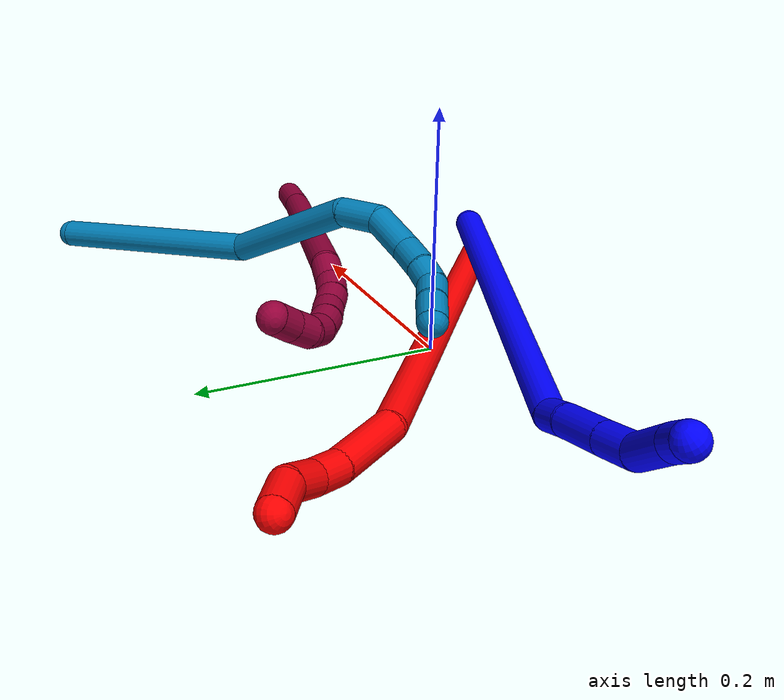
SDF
<sdf version="1.7">
 <world name="default">
  <model name="1">
   <static>0</static>
   <link name="1">
    <collision name="collision-cylinder-e_1_1_4">
     <pose>-0.116605 0.11567 -0.006835 -1.62982 -0.788554 0.831316</pose>
     <geometry><cylinder><radius>0.0125</radius><length>0.328773</length></cylinder></geometry>
     <surface>
      <friction><ode><mu>1.16</mu><mu2>1.16</mu2><slip1>0</slip1><slip2>0</slip2></ode></friction>
      <contact><ode><kp>1e+06</kp><kd>1</kd><max_vel>0</max_vel><min_depth>0.001</min_depth></ode></contact>
     </surface>
    </collision>
    <visual name="visual-cylinder-e_1_1_4">
     <pose>-0.116605 0.11567 -0.006835 -1.62982 -0.788554 0.831316</pose>
     <geometry><cylinder><radius>0.0125</radius><length>0.328773</length></cylinder></geometry>
     <material><ambient>0 0 1 1</ambient></material>
    </visual>
    <collision name="collision-cylinder-e_2_4_5">
     <pose>-0.237903 0.243126 -0.017513 -1.88598 -0.361883 0.493853</pose>
     <geometry><cylinder><radius>0.0125</radius><length>0.026513</length></cylinder></geometry>
     <surface>
      <friction><ode><mu>1.16</mu><mu2>1.16</mu2><slip1>0</slip1><slip2>0</slip2></ode></friction>
      <contact><ode><kp>1e+06</kp><kd>1</kd><max_vel>0</max_vel><min_depth>0.001</min_depth></ode></contact>
     </surface>
    </collision>
    <visual name="visual-cylinder-e_2_4_5">
     <pose>-0.237903 0.243126 -0.017513 -1.88598 -0.361883 0.493853</pose>
     <geometry><cylinder><radius>0.0125</radius><length>0.026513</length></cylinder></geometry>
     <material><ambient>0 0 1 1</ambient></material>
    </visual>
    <collision name="collision-cylinder-e_3_5_6">
     <pose>-0.250327 0.275685 -0.02414 -1.70403 -0.35338 0.40263</pose>
     <geometry><cylinder><radius>0.0125</radius><length>0.044674</length></cylinder></geometry>
     <surface>
      <friction><ode><mu>1.16</mu><mu2>1.16</mu2><slip1>0</slip1><slip2>0</slip2></ode></friction>
      <contact><ode><kp>1e+06</kp><kd>1</kd><max_vel>0</max_vel><min_depth>0.001</min_depth></ode></contact>
     </surface>
    </collision>
    <visual name="visual-cylinder-e_3_5_6">
     <pose>-0.250327 0.275685 -0.02414 -1.70403 -0.35338 0.40263</pose>
     <geometry><cylinder><radius>0.0125</radius><length>0.044674</length></cylinder></geometry>
     <material><ambient>0 0 1 1</ambient></material>
    </visual>
    <collision name="collision-cylinder-e_4_6_7">
     <pose>-0.263223 0.311221 -0.028839 -1.69976 -0.334001 0.37908</pose>
     <geometry><cylinder><radius>0.0125</radius><length>0.031519</length></cylinder></geometry>
     <surface>
      <friction><ode><mu>1.16</mu><mu2>1.16</mu2><slip1>0</slip1><slip2>0</slip2></ode></friction>
      <contact><ode><kp>1e+06</kp><kd>1</kd><max_vel>0</max_vel><min_depth>0.001</min_depth></ode></contact>
     </surface>
    </collision>
    <visual name="visual-cylinder-e_4_6_7">
     <pose>-0.263223 0.311221 -0.028839 -1.69976 -0.334001 0.37908</pose>
     <geometry><cylinder><radius>0.0125</radius><length>0.031519</length></cylinder></geometry>
     <material><ambient>0 0 1 1</ambient></material>
    </visual>
    <collision name="collision-cylinder-e_5_7_8">
     <pose>-0.272053 0.345593 -0.042657 -2.11641 -0.158368 0.280154</pose>
     <geometry><cylinder><radius>0.0125</radius><length>0.046455</length></cylinder></geometry>
     <surface>
      <friction><ode><mu>1.16</mu><mu2>1.16</mu2><slip1>0</slip1><slip2>0</slip2></ode></friction>
      <contact><ode><kp>1e+06</kp><kd>1</kd><max_vel>0</max_vel><min_depth>0.001</min_depth></ode></contact>
     </surface>
    </collision>
    <visual name="visual-cylinder-e_5_7_8">
     <pose>-0.272053 0.345593 -0.042657 -2.11641 -0.158368 0.280154</pose>
     <geometry><cylinder><radius>0.0125</radius><length>0.046455</length></cylinder></geometry>
     <material><ambient>0 0 1 1</ambient></material>
    </visual>
    <collision name="collision-cylinder-e_6_8_2">
     <pose>-0.278929 0.373953 -0.060456 -2.16356 -0.295454 0.545374</pose>
     <geometry><cylinder><radius>0.0125</radius><length>0.022065</length></cylinder></geometry>
     <surface>
      <friction><ode><mu>1.16</mu><mu2>1.16</mu2><slip1>0</slip1><slip2>0</slip2></ode></friction>
      <contact><ode><kp>1e+06</kp><kd>1</kd><max_vel>0</max_vel><min_depth>0.001</min_depth></ode></contact>
     </surface>
    </collision>
    <visual name="visual-cylinder-e_6_8_2">
     <pose>-0.278929 0.373953 -0.060456 -2.16356 -0.295454 0.545374</pose>
     <geometry><cylinder><radius>0.0125</radius><length>0.022065</length></cylinder></geometry>
     <material><ambient>0 0 1 1</ambient></material>
    </visual>
    <collision name="collision-sphere-2">
     <pose>-0.282141 0.382708 -0.066353 0 -0 0</pose>
     <geometry><sphere><radius>0.0125</radius></sphere></geometry>
     <surface>
      <friction><ode><mu>1.16</mu><mu2>1.16</mu2><slip1>0</slip1><slip2>0</slip2></ode></friction>
      <contact><ode><kp>1e+06</kp><kd>1</kd><max_vel>0</max_vel><min_depth>0.001</min_depth></ode></contact>
     </surface>
    </collision>
    <visual name="visual-sphere-2">
     <pose>-0.282141 0.382708 -0.066353 0 -0 0</pose>
     <geometry><sphere><radius>0.0125</radius></sphere></geometry>
     <material><ambient>0 0 1 1</ambient></material>
    </visual>
    <collision name="collision-sphere-4">
     <pose>-0.23321 0.231339 -0.01367 0 -0 0</pose>
     <geometry><sphere><radius>0.0125</radius></sphere></geometry>
     <surface>
      <friction><ode><mu>1.16</mu><mu2>1.16</mu2><slip1>0</slip1><slip2>0</slip2></ode></friction>
      <contact><ode><kp>1e+06</kp><kd>1</kd><max_vel>0</max_vel><min_depth>0.001</min_depth></ode></contact>
     </surface>
    </collision>
    <visual name="visual-sphere-4">
     <pose>-0.23321 0.231339 -0.01367 0 -0 0</pose>
     <geometry><sphere><radius>0.0125</radius></sphere></geometry>
     <material><ambient>0 0 1 1</ambient></material>
    </visual>
    <collision name="collision-sphere-1">
     <geometry><sphere><radius>0.0125</radius></sphere></geometry>
     <surface>
      <friction><ode><mu>1.16</mu><mu2>1.16</mu2><slip1>0</slip1><slip2>0</slip2></ode></friction>
      <contact><ode><kp>1e+06</kp><kd>1</kd><max_vel>0</max_vel><min_depth>0.001</min_depth></ode></contact>
     </surface>
    </collision>
    <visual name="visual-sphere-1">
     <geometry><sphere><radius>0.0125</radius></sphere></geometry>
     <material><ambient>0 0 1 1</ambient></material>
    </visual>
    <collision name="collision-sphere-8">
     <pose>-0.275716 0.365199 -0.05456 0 -0 0</pose>
     <geometry><sphere><radius>0.0125</radius></sphere></geometry>
     <surface>
      <friction><ode><mu>1.16</mu><mu2>1.16</mu2><slip1>0</slip1><slip2>0</slip2></ode></friction>
      <contact><ode><kp>1e+06</kp><kd>1</kd><max_vel>0</max_vel><min_depth>0.001</min_depth></ode></contact>
     </surface>
    </collision>
    <visual name="visual-sphere-8">
     <pose>-0.275716 0.365199 -0.05456 0 -0 0</pose>
     <geometry><sphere><radius>0.0125</radius></sphere></geometry>
     <material><ambient>0 0 1 1</ambient></material>
    </visual>
    <collision name="collision-sphere-5">
     <pose>-0.242596 0.254913 -0.021357 0 -0 0</pose>
     <geometry><sphere><radius>0.0125</radius></sphere></geometry>
     <surface>
      <friction><ode><mu>1.16</mu><mu2>1.16</mu2><slip1>0</slip1><slip2>0</slip2></ode></friction>
      <contact><ode><kp>1e+06</kp><kd>1</kd><max_vel>0</max_vel><min_depth>0.001</min_depth></ode></contact>
     </surface>
    </collision>
    <visual name="visual-sphere-5">
     <pose>-0.242596 0.254913 -0.021357 0 -0 0</pose>
     <geometry><sphere><radius>0.0125</radius></sphere></geometry>
     <material><ambient>0 0 1 1</ambient></material>
    </visual>
    <collision name="collision-sphere-6">
     <pose>-0.258057 0.296456 -0.026924 0 -0 0</pose>
     <geometry><sphere><radius>0.0125</radius></sphere></geometry>
     <surface>
      <friction><ode><mu>1.16</mu><mu2>1.16</mu2><slip1>0</slip1><slip2>0</slip2></ode></friction>
      <contact><ode><kp>1e+06</kp><kd>1</kd><max_vel>0</max_vel><min_depth>0.001</min_depth></ode></contact>
     </surface>
    </collision>
    <visual name="visual-sphere-6">
     <pose>-0.258057 0.296456 -0.026924 0 -0 0</pose>
     <geometry><sphere><radius>0.0125</radius></sphere></geometry>
     <material><ambient>0 0 1 1</ambient></material>
    </visual>
    <collision name="collision-sphere-7">
     <pose>-0.26839 0.325986 -0.030754 0 -0 0</pose>
     <geometry><sphere><radius>0.0125</radius></sphere></geometry>
     <surface>
      <friction><ode><mu>1.16</mu><mu2>1.16</mu2><slip1>0</slip1><slip2>0</slip2></ode></friction>
      <contact><ode><kp>1e+06</kp><kd>1</kd><max_vel>0</max_vel><min_depth>0.001</min_depth></ode></contact>
     </surface>
    </collision>
    <visual name="visual-sphere-7">
     <pose>-0.26839 0.325986 -0.030754 0 -0 0</pose>
     <geometry><sphere><radius>0.0125</radius></sphere></geometry>
     <material><ambient>0 0 1 1</ambient></material>
    </visual>
    <inertial>
     <pose>-0.165834 0.181813 -0.016029 0 -0 0</pose>
     <mass>0.5</mass>
     <inertia><ixx>0.002974</ixx><ixy>0</ixy><ixz>0</ixz><iyy>0.003021</iyy><iyz>0</iyz><izz>-5e-06</izz></inertia>
    </inertial>
   </link>
   <pose>0.160929 -0.127151 0.038296 2.80182 -0.475556 -1.05682</pose>
  </model>
  <model name="2">
   <static>0</static>
   <link name="2">
    <collision name="collision-cylinder-e_1_1_4">
     <pose>-0.114372 0.101103 0.087935 -0.854943 -0.706559 0.33287</pose>
     <geometry><cylinder><radius>0.0125</radius><length>0.352337</length></cylinder></geometry>
     <surface>
      <friction><ode><mu>1.16</mu><mu2>1.16</mu2><slip1>0</slip1><slip2>0</slip2></ode></friction>
      <contact><ode><kp>1e+06</kp><kd>1</kd><max_vel>0</max_vel><min_depth>0.001</min_depth></ode></contact>
     </surface>
    </collision>
    <visual name="visual-cylinder-e_1_1_4">
     <pose>-0.114372 0.101103 0.087935 -0.854943 -0.706559 0.33287</pose>
     <geometry><cylinder><radius>0.0125</radius><length>0.352337</length></cylinder></geometry>
     <material><ambient>1 0 0 1</ambient></material>
    </visual>
    <collision name="collision-cylinder-e_2_4_5">
     <pose>-0.24839 0.225212 0.18261 -1.2858 -0.6865 0.523157</pose>
     <geometry><cylinder><radius>0.0125</radius><length>0.061989</length></cylinder></geometry>
     <surface>
      <friction><ode><mu>1.16</mu><mu2>1.16</mu2><slip1>0</slip1><slip2>0</slip2></ode></friction>
      <contact><ode><kp>1e+06</kp><kd>1</kd><max_vel>0</max_vel><min_depth>0.001</min_depth></ode></contact>
     </surface>
    </collision>
    <visual name="visual-cylinder-e_2_4_5">
     <pose>-0.24839 0.225212 0.18261 -1.2858 -0.6865 0.523157</pose>
     <geometry><cylinder><radius>0.0125</radius><length>0.061989</length></cylinder></geometry>
     <material><ambient>1 0 0 1</ambient></material>
    </visual>
    <collision name="collision-cylinder-e_3_5_6">
     <pose>-0.274199 0.259123 0.191899 -1.34125 -0.50312 0.402236</pose>
     <geometry><cylinder><radius>0.0125</radius><length>0.025566</length></cylinder></geometry>
     <surface>
      <friction><ode><mu>1.16</mu><mu2>1.16</mu2><slip1>0</slip1><slip2>0</slip2></ode></friction>
      <contact><ode><kp>1e+06</kp><kd>1</kd><max_vel>0</max_vel><min_depth>0.001</min_depth></ode></contact>
     </surface>
    </collision>
    <visual name="visual-cylinder-e_3_5_6">
     <pose>-0.274199 0.259123 0.191899 -1.34125 -0.50312 0.402236</pose>
     <geometry><cylinder><radius>0.0125</radius><length>0.025566</length></cylinder></geometry>
     <material><ambient>1 0 0 1</ambient></material>
    </visual>
    <collision name="collision-cylinder-e_4_6_7">
     <pose>-0.28513 0.282797 0.200347 -1.13798 -0.326823 0.210121</pose>
     <geometry><cylinder><radius>0.0125</radius><length>0.029703</length></cylinder></geometry>
     <surface>
      <friction><ode><mu>1.16</mu><mu2>1.16</mu2><slip1>0</slip1><slip2>0</slip2></ode></friction>
      <contact><ode><kp>1e+06</kp><kd>1</kd><max_vel>0</max_vel><min_depth>0.001</min_depth></ode></contact>
     </surface>
    </collision>
    <visual name="visual-cylinder-e_4_6_7">
     <pose>-0.28513 0.282797 0.200347 -1.13798 -0.326823 0.210121</pose>
     <geometry><cylinder><radius>0.0125</radius><length>0.029703</length></cylinder></geometry>
     <material><ambient>1 0 0 1</ambient></material>
    </visual>
    <collision name="collision-cylinder-e_5_7_2">
     <pose>-0.299762 0.303357 0.214796 -0.739018 -0.706107 0.283518</pose>
     <geometry><cylinder><radius>0.0125</radius><length>0.030405</length></cylinder></geometry>
     <surface>
      <friction><ode><mu>1.16</mu><mu2>1.16</mu2><slip1>0</slip1><slip2>0</slip2></ode></friction>
      <contact><ode><kp>1e+06</kp><kd>1</kd><max_vel>0</max_vel><min_depth>0.001</min_depth></ode></contact>
     </surface>
    </collision>
    <visual name="visual-cylinder-e_5_7_2">
     <pose>-0.299762 0.303357 0.214796 -0.739018 -0.706107 0.283518</pose>
     <geometry><cylinder><radius>0.0125</radius><length>0.030405</length></cylinder></geometry>
     <material><ambient>1 0 0 1</ambient></material>
    </visual>
    <collision name="collision-sphere-2">
     <pose>-0.309627 0.311148 0.223346 0 -0 0</pose>
     <geometry><sphere><radius>0.0125</radius></sphere></geometry>
     <surface>
      <friction><ode><mu>1.16</mu><mu2>1.16</mu2><slip1>0</slip1><slip2>0</slip2></ode></friction>
      <contact><ode><kp>1e+06</kp><kd>1</kd><max_vel>0</max_vel><min_depth>0.001</min_depth></ode></contact>
     </surface>
    </collision>
    <visual name="visual-sphere-2">
     <pose>-0.309627 0.311148 0.223346 0 -0 0</pose>
     <geometry><sphere><radius>0.0125</radius></sphere></geometry>
     <material><ambient>1 0 0 1</ambient></material>
    </visual>
    <collision name="collision-sphere-7">
     <pose>-0.289898 0.295566 0.206246 0 -0 0</pose>
     <geometry><sphere><radius>0.0125</radius></sphere></geometry>
     <surface>
      <friction><ode><mu>1.16</mu><mu2>1.16</mu2><slip1>0</slip1><slip2>0</slip2></ode></friction>
      <contact><ode><kp>1e+06</kp><kd>1</kd><max_vel>0</max_vel><min_depth>0.001</min_depth></ode></contact>
     </surface>
    </collision>
    <visual name="visual-sphere-7">
     <pose>-0.289898 0.295566 0.206246 0 -0 0</pose>
     <geometry><sphere><radius>0.0125</radius></sphere></geometry>
     <material><ambient>1 0 0 1</ambient></material>
    </visual>
    <collision name="collision-sphere-6">
     <pose>-0.280362 0.270029 0.194447 0 -0 0</pose>
     <geometry><sphere><radius>0.0125</radius></sphere></geometry>
     <surface>
      <friction><ode><mu>1.16</mu><mu2>1.16</mu2><slip1>0</slip1><slip2>0</slip2></ode></friction>
      <contact><ode><kp>1e+06</kp><kd>1</kd><max_vel>0</max_vel><min_depth>0.001</min_depth></ode></contact>
     </surface>
    </collision>
    <visual name="visual-sphere-6">
     <pose>-0.280362 0.270029 0.194447 0 -0 0</pose>
     <geometry><sphere><radius>0.0125</radius></sphere></geometry>
     <material><ambient>1 0 0 1</ambient></material>
    </visual>
    <collision name="collision-sphere-5">
     <pose>-0.268035 0.248218 0.189351 0 -0 0</pose>
     <geometry><sphere><radius>0.0125</radius></sphere></geometry>
     <surface>
      <friction><ode><mu>1.16</mu><mu2>1.16</mu2><slip1>0</slip1><slip2>0</slip2></ode></friction>
      <contact><ode><kp>1e+06</kp><kd>1</kd><max_vel>0</max_vel><min_depth>0.001</min_depth></ode></contact>
     </surface>
    </collision>
    <visual name="visual-sphere-5">
     <pose>-0.268035 0.248218 0.189351 0 -0 0</pose>
     <geometry><sphere><radius>0.0125</radius></sphere></geometry>
     <material><ambient>1 0 0 1</ambient></material>
    </visual>
    <collision name="collision-sphere-1">
     <geometry><sphere><radius>0.0125</radius></sphere></geometry>
     <surface>
      <friction><ode><mu>1.16</mu><mu2>1.16</mu2><slip1>0</slip1><slip2>0</slip2></ode></friction>
      <contact><ode><kp>1e+06</kp><kd>1</kd><max_vel>0</max_vel><min_depth>0.001</min_depth></ode></contact>
     </surface>
    </collision>
    <visual name="visual-sphere-1">
     <geometry><sphere><radius>0.0125</radius></sphere></geometry>
     <material><ambient>1 0 0 1</ambient></material>
    </visual>
    <collision name="collision-sphere-4">
     <pose>-0.228745 0.202206 0.17587 0 -0 0</pose>
     <geometry><sphere><radius>0.0125</radius></sphere></geometry>
     <surface>
      <friction><ode><mu>1.16</mu><mu2>1.16</mu2><slip1>0</slip1><slip2>0</slip2></ode></friction>
      <contact><ode><kp>1e+06</kp><kd>1</kd><max_vel>0</max_vel><min_depth>0.001</min_depth></ode></contact>
     </surface>
    </collision>
    <visual name="visual-sphere-4">
     <pose>-0.228745 0.202206 0.17587 0 -0 0</pose>
     <geometry><sphere><radius>0.0125</radius></sphere></geometry>
     <material><ambient>1 0 0 1</ambient></material>
    </visual>
    <inertial>
     <pose>-0.160577 0.147662 0.119381 0 -0 0</pose>
     <mass>0.5</mass>
     <inertia>
      <ixx>0.003549</ixx>
      <ixy>0</ixy>
      <ixz>0</ixz>
      <iyy>0.003817</iyy>
      <iyz>0</iyz>
      <izz>0.000288</izz>
     </inertia>
    </inertial>
   </link>
   <pose>0.150884 -0.129428 0.01144 0.880791 -0.858559 -0.714353</pose>
  </model>
  <model name="8">
   <static>0</static>
   <link name="8">
    <collision name="collision-cylinder-e_1_1_4">
     <pose>0.000263 0.000225 -0.028866 -3.13379 0.009096 -1.72331</pose>
     <geometry><cylinder><radius>0.0125</radius><length>0.057735</length></cylinder></geometry>
     <surface>
      <friction><ode><mu>1.16</mu><mu2>1.16</mu2><slip1>0</slip1><slip2>0</slip2></ode></friction>
      <contact><ode><kp>1e+06</kp><kd>1</kd><max_vel>0</max_vel><min_depth>0.001</min_depth></ode></contact>
     </surface>
    </collision>
    <visual name="visual-cylinder-e_1_1_4">
     <pose>0.000263 0.000225 -0.028866 -3.13379 0.009096 -1.72331</pose>
     <geometry><cylinder><radius>0.0125</radius><length>0.057735</length></cylinder></geometry>
     <material><ambient>0.584314 0 0.227451 1</ambient></material>
    </visual>
    <collision name="collision-cylinder-e_2_4_5">
     <pose>-0.007061 0.002062 -0.191911 -3.12959 -0.056473 2.7227</pose>
     <geometry><cylinder><radius>0.0125</radius><length>0.268808</length></cylinder></geometry>
     <surface>
      <friction><ode><mu>1.16</mu><mu2>1.16</mu2><slip1>0</slip1><slip2>0</slip2></ode></friction>
      <contact><ode><kp>1e+06</kp><kd>1</kd><max_vel>0</max_vel><min_depth>0.001</min_depth></ode></contact>
     </surface>
    </collision>
    <visual name="visual-cylinder-e_2_4_5">
     <pose>-0.007061 0.002062 -0.191911 -3.12959 -0.056473 2.7227</pose>
     <geometry><cylinder><radius>0.0125</radius><length>0.268808</length></cylinder></geometry>
     <material><ambient>0.584314 0 0.227451 1</ambient></material>
    </visual>
    <collision name="collision-cylinder-e_3_5_6">
     <pose>-0.012601 0.007465 -0.338766 -2.85086 0.153469 -0.967175</pose>
     <geometry><cylinder><radius>0.0125</radius><length>0.026775</length></cylinder></geometry>
     <surface>
      <friction><ode><mu>1.16</mu><mu2>1.16</mu2><slip1>0</slip1><slip2>0</slip2></ode></friction>
      <contact><ode><kp>1e+06</kp><kd>1</kd><max_vel>0</max_vel><min_depth>0.001</min_depth></ode></contact>
     </surface>
    </collision>
    <visual name="visual-cylinder-e_3_5_6">
     <pose>-0.012601 0.007465 -0.338766 -2.85086 0.153469 -0.967175</pose>
     <geometry><cylinder><radius>0.0125</radius><length>0.026775</length></cylinder></geometry>
     <material><ambient>0.584314 0 0.227451 1</ambient></material>
    </visual>
    <collision name="collision-cylinder-e_4_6_7">
     <pose>-0.010535 0.013882 -0.361636 -2.88968 0.001827 -0.014428</pose>
     <geometry><cylinder><radius>0.0125</radius><length>0.021055</length></cylinder></geometry>
     <surface>
      <friction><ode><mu>1.16</mu><mu2>1.16</mu2><slip1>0</slip1><slip2>0</slip2></ode></friction>
      <contact><ode><kp>1e+06</kp><kd>1</kd><max_vel>0</max_vel><min_depth>0.001</min_depth></ode></contact>
     </surface>
    </collision>
    <visual name="visual-cylinder-e_4_6_7">
     <pose>-0.010535 0.013882 -0.361636 -2.88968 0.001827 -0.014428</pose>
     <geometry><cylinder><radius>0.0125</radius><length>0.021055</length></cylinder></geometry>
     <material><ambient>0.584314 0 0.227451 1</ambient></material>
    </visual>
    <collision name="collision-cylinder-e_5_7_8">
     <pose>-0.012371 0.020019 -0.381709 -2.79984 -0.175127 0.941227</pose>
     <geometry><cylinder><radius>0.0125</radius><length>0.021294</length></cylinder></geometry>
     <surface>
      <friction><ode><mu>1.16</mu><mu2>1.16</mu2><slip1>0</slip1><slip2>0</slip2></ode></friction>
      <contact><ode><kp>1e+06</kp><kd>1</kd><max_vel>0</max_vel><min_depth>0.001</min_depth></ode></contact>
     </surface>
    </collision>
    <visual name="visual-cylinder-e_5_7_8">
     <pose>-0.012371 0.020019 -0.381709 -2.79984 -0.175127 0.941227</pose>
     <geometry><cylinder><radius>0.0125</radius><length>0.021294</length></cylinder></geometry>
     <material><ambient>0.584314 0 0.227451 1</ambient></material>
    </visual>
    <collision name="collision-cylinder-e_6_8_9">
     <pose>-0.01622 0.025452 -0.402811 -2.97231 -0.173403 1.59495</pose>
     <geometry><cylinder><radius>0.0125</radius><length>0.023119</length></cylinder></geometry>
     <surface>
      <friction><ode><mu>1.16</mu><mu2>1.16</mu2><slip1>0</slip1><slip2>0</slip2></ode></friction>
      <contact><ode><kp>1e+06</kp><kd>1</kd><max_vel>0</max_vel><min_depth>0.001</min_depth></ode></contact>
     </surface>
    </collision>
    <visual name="visual-cylinder-e_6_8_9">
     <pose>-0.01622 0.025452 -0.402811 -2.97231 -0.173403 1.59495</pose>
     <geometry><cylinder><radius>0.0125</radius><length>0.023119</length></cylinder></geometry>
     <material><ambient>0.584314 0 0.227451 1</ambient></material>
    </visual>
    <collision name="collision-cylinder-e_7_9_10">
     <pose>-0.021412 0.030101 -0.423733 -2.86712 -0.307269 1.68504</pose>
     <geometry><cylinder><radius>0.0125</radius><length>0.021142</length></cylinder></geometry>
     <surface>
      <friction><ode><mu>1.16</mu><mu2>1.16</mu2><slip1>0</slip1><slip2>0</slip2></ode></friction>
      <contact><ode><kp>1e+06</kp><kd>1</kd><max_vel>0</max_vel><min_depth>0.001</min_depth></ode></contact>
     </surface>
    </collision>
    <visual name="visual-cylinder-e_7_9_10">
     <pose>-0.021412 0.030101 -0.423733 -2.86712 -0.307269 1.68504</pose>
     <geometry><cylinder><radius>0.0125</radius><length>0.021142</length></cylinder></geometry>
     <material><ambient>0.584314 0 0.227451 1</ambient></material>
    </visual>
    <collision name="collision-cylinder-e_8_10_11">
     <pose>-0.030355 0.033776 -0.441568 -3.02611 -0.611745 2.7795</pose>
     <geometry><cylinder><radius>0.0125</radius><length>0.02001</length></cylinder></geometry>
     <surface>
      <friction><ode><mu>1.16</mu><mu2>1.16</mu2><slip1>0</slip1><slip2>0</slip2></ode></friction>
      <contact><ode><kp>1e+06</kp><kd>1</kd><max_vel>0</max_vel><min_depth>0.001</min_depth></ode></contact>
     </surface>
    </collision>
    <visual name="visual-cylinder-e_8_10_11">
     <pose>-0.030355 0.033776 -0.441568 -3.02611 -0.611745 2.7795</pose>
     <geometry><cylinder><radius>0.0125</radius><length>0.02001</length></cylinder></geometry>
     <material><ambient>0.584314 0 0.227451 1</ambient></material>
    </visual>
    <collision name="collision-cylinder-e_9_11_12">
     <pose>-0.044681 0.034311 -0.454845 3.0623 -1.02951 -3.00156</pose>
     <geometry><cylinder><radius>0.0125</radius><length>0.020021</length></cylinder></geometry>
     <surface>
      <friction><ode><mu>1.16</mu><mu2>1.16</mu2><slip1>0</slip1><slip2>0</slip2></ode></friction>
      <contact><ode><kp>1e+06</kp><kd>1</kd><max_vel>0</max_vel><min_depth>0.001</min_depth></ode></contact>
     </surface>
    </collision>
    <visual name="visual-cylinder-e_9_11_12">
     <pose>-0.044681 0.034311 -0.454845 3.0623 -1.02951 -3.00156</pose>
     <geometry><cylinder><radius>0.0125</radius><length>0.020021</length></cylinder></geometry>
     <material><ambient>0.584314 0 0.227451 1</ambient></material>
    </visual>
    <collision name="collision-cylinder-e_10_12_2">
     <pose>-0.061573 0.03298 -0.465506 2.97611 -0.978342 -2.8325</pose>
     <geometry><cylinder><radius>0.0125</radius><length>0.02004</length></cylinder></geometry>
     <surface>
      <friction><ode><mu>1.16</mu><mu2>1.16</mu2><slip1>0</slip1><slip2>0</slip2></ode></friction>
      <contact><ode><kp>1e+06</kp><kd>1</kd><max_vel>0</max_vel><min_depth>0.001</min_depth></ode></contact>
     </surface>
    </collision>
    <visual name="visual-cylinder-e_10_12_2">
     <pose>-0.061573 0.03298 -0.465506 2.97611 -0.978342 -2.8325</pose>
     <geometry><cylinder><radius>0.0125</radius><length>0.02004</length></cylinder></geometry>
     <material><ambient>0.584314 0 0.227451 1</ambient></material>
    </visual>
    <collision name="collision-sphere-2">
     <pose>-0.069885 0.032059 -0.471025 0 -0 0</pose>
     <geometry><sphere><radius>0.0125</radius></sphere></geometry>
     <surface>
      <friction><ode><mu>1.16</mu><mu2>1.16</mu2><slip1>0</slip1><slip2>0</slip2></ode></friction>
      <contact><ode><kp>1e+06</kp><kd>1</kd><max_vel>0</max_vel><min_depth>0.001</min_depth></ode></contact>
     </surface>
    </collision>
    <visual name="visual-sphere-2">
     <pose>-0.069885 0.032059 -0.471025 0 -0 0</pose>
     <geometry><sphere><radius>0.0125</radius></sphere></geometry>
     <material><ambient>0.584314 0 0.227451 1</ambient></material>
    </visual>
    <collision name="collision-sphere-12">
     <pose>-0.05326 0.033902 -0.459987 0 -0 0</pose>
     <geometry><sphere><radius>0.0125</radius></sphere></geometry>
     <surface>
      <friction><ode><mu>1.16</mu><mu2>1.16</mu2><slip1>0</slip1><slip2>0</slip2></ode></friction>
      <contact><ode><kp>1e+06</kp><kd>1</kd><max_vel>0</max_vel><min_depth>0.001</min_depth></ode></contact>
     </surface>
    </collision>
    <visual name="visual-sphere-12">
     <pose>-0.05326 0.033902 -0.459987 0 -0 0</pose>
     <geometry><sphere><radius>0.0125</radius></sphere></geometry>
     <material><ambient>0.584314 0 0.227451 1</ambient></material>
    </visual>
    <collision name="collision-sphere-11">
     <pose>-0.036101 0.034719 -0.449704 0 -0 0</pose>
     <geometry><sphere><radius>0.0125</radius></sphere></geometry>
     <surface>
      <friction><ode><mu>1.16</mu><mu2>1.16</mu2><slip1>0</slip1><slip2>0</slip2></ode></friction>
      <contact><ode><kp>1e+06</kp><kd>1</kd><max_vel>0</max_vel><min_depth>0.001</min_depth></ode></contact>
     </surface>
    </collision>
    <visual name="visual-sphere-11">
     <pose>-0.036101 0.034719 -0.449704 0 -0 0</pose>
     <geometry><sphere><radius>0.0125</radius></sphere></geometry>
     <material><ambient>0.584314 0 0.227451 1</ambient></material>
    </visual>
    <collision name="collision-sphere-10">
     <pose>-0.024609 0.032832 -0.433432 0 -0 0</pose>
     <geometry><sphere><radius>0.0125</radius></sphere></geometry>
     <surface>
      <friction><ode><mu>1.16</mu><mu2>1.16</mu2><slip1>0</slip1><slip2>0</slip2></ode></friction>
      <contact><ode><kp>1e+06</kp><kd>1</kd><max_vel>0</max_vel><min_depth>0.001</min_depth></ode></contact>
     </surface>
    </collision>
    <visual name="visual-sphere-10">
     <pose>-0.024609 0.032832 -0.433432 0 -0 0</pose>
     <geometry><sphere><radius>0.0125</radius></sphere></geometry>
     <material><ambient>0.584314 0 0.227451 1</ambient></material>
    </visual>
    <collision name="collision-sphere-9">
     <pose>-0.018215 0.02737 -0.414034 0 -0 0</pose>
     <geometry><sphere><radius>0.0125</radius></sphere></geometry>
     <surface>
      <friction><ode><mu>1.16</mu><mu2>1.16</mu2><slip1>0</slip1><slip2>0</slip2></ode></friction>
      <contact><ode><kp>1e+06</kp><kd>1</kd><max_vel>0</max_vel><min_depth>0.001</min_depth></ode></contact>
     </surface>
    </collision>
    <visual name="visual-sphere-9">
     <pose>-0.018215 0.02737 -0.414034 0 -0 0</pose>
     <geometry><sphere><radius>0.0125</radius></sphere></geometry>
     <material><ambient>0.584314 0 0.227451 1</ambient></material>
    </visual>
    <collision name="collision-sphere-4">
     <pose>0.000525 0.000451 -0.057731 0 -0 0</pose>
     <geometry><sphere><radius>0.0125</radius></sphere></geometry>
     <surface>
      <friction><ode><mu>1.16</mu><mu2>1.16</mu2><slip1>0</slip1><slip2>0</slip2></ode></friction>
      <contact><ode><kp>1e+06</kp><kd>1</kd><max_vel>0</max_vel><min_depth>0.001</min_depth></ode></contact>
     </surface>
    </collision>
    <visual name="visual-sphere-4">
     <pose>0.000525 0.000451 -0.057731 0 -0 0</pose>
     <geometry><sphere><radius>0.0125</radius></sphere></geometry>
     <material><ambient>0.584314 0 0.227451 1</ambient></material>
    </visual>
    <collision name="collision-sphere-1">
     <geometry><sphere><radius>0.0125</radius></sphere></geometry>
     <surface>
      <friction><ode><mu>1.16</mu><mu2>1.16</mu2><slip1>0</slip1><slip2>0</slip2></ode></friction>
      <contact><ode><kp>1e+06</kp><kd>1</kd><max_vel>0</max_vel><min_depth>0.001</min_depth></ode></contact>
     </surface>
    </collision>
    <visual name="visual-sphere-1">
     <geometry><sphere><radius>0.0125</radius></sphere></geometry>
     <material><ambient>0.584314 0 0.227451 1</ambient></material>
    </visual>
    <collision name="collision-sphere-8">
     <pose>-0.014226 0.023533 -0.391587 0 -0 0</pose>
     <geometry><sphere><radius>0.0125</radius></sphere></geometry>
     <surface>
      <friction><ode><mu>1.16</mu><mu2>1.16</mu2><slip1>0</slip1><slip2>0</slip2></ode></friction>
      <contact><ode><kp>1e+06</kp><kd>1</kd><max_vel>0</max_vel><min_depth>0.001</min_depth></ode></contact>
     </surface>
    </collision>
    <visual name="visual-sphere-8">
     <pose>-0.014226 0.023533 -0.391587 0 -0 0</pose>
     <geometry><sphere><radius>0.0125</radius></sphere></geometry>
     <material><ambient>0.584314 0 0.227451 1</ambient></material>
    </visual>
    <collision name="collision-sphere-5">
     <pose>-0.014647 0.003673 -0.326092 0 -0 0</pose>
     <geometry><sphere><radius>0.0125</radius></sphere></geometry>
     <surface>
      <friction><ode><mu>1.16</mu><mu2>1.16</mu2><slip1>0</slip1><slip2>0</slip2></ode></friction>
      <contact><ode><kp>1e+06</kp><kd>1</kd><max_vel>0</max_vel><min_depth>0.001</min_depth></ode></contact>
     </surface>
    </collision>
    <visual name="visual-sphere-5">
     <pose>-0.014647 0.003673 -0.326092 0 -0 0</pose>
     <geometry><sphere><radius>0.0125</radius></sphere></geometry>
     <material><ambient>0.584314 0 0.227451 1</ambient></material>
    </visual>
    <collision name="collision-sphere-6">
     <pose>-0.010554 0.011258 -0.351441 0 -0 0</pose>
     <geometry><sphere><radius>0.0125</radius></sphere></geometry>
     <surface>
      <friction><ode><mu>1.16</mu><mu2>1.16</mu2><slip1>0</slip1><slip2>0</slip2></ode></friction>
      <contact><ode><kp>1e+06</kp><kd>1</kd><max_vel>0</max_vel><min_depth>0.001</min_depth></ode></contact>
     </surface>
    </collision>
    <visual name="visual-sphere-6">
     <pose>-0.010554 0.011258 -0.351441 0 -0 0</pose>
     <geometry><sphere><radius>0.0125</radius></sphere></geometry>
     <material><ambient>0.584314 0 0.227451 1</ambient></material>
    </visual>
    <collision name="collision-sphere-7">
     <pose>-0.010516 0.016506 -0.371831 0 -0 0</pose>
     <geometry><sphere><radius>0.0125</radius></sphere></geometry>
     <surface>
      <friction><ode><mu>1.16</mu><mu2>1.16</mu2><slip1>0</slip1><slip2>0</slip2></ode></friction>
      <contact><ode><kp>1e+06</kp><kd>1</kd><max_vel>0</max_vel><min_depth>0.001</min_depth></ode></contact>
     </surface>
    </collision>
    <visual name="visual-sphere-7">
     <pose>-0.010516 0.016506 -0.371831 0 -0 0</pose>
     <geometry><sphere><radius>0.0125</radius></sphere></geometry>
     <material><ambient>0.584314 0 0.227451 1</ambient></material>
    </visual>
    <inertial>
     <pose>-0.012538 0.009468 -0.247218 0 -0 0</pose>
     <mass>0.5</mass>
     <inertia>
      <ixx>-0.000847</ixx>
      <ixy>0</ixy>
      <ixz>0</ixz>
      <iyy>0.002141</iyy>
      <iyz>0</iyz>
      <izz>3.7e-05</izz>
     </inertia>
    </inertial>
   </link>
   <pose>0.38759 -0.028647 0.012491 -1.70716 0.525793 -1.87241</pose>
  </model>
  <model name="9">
   <static>0</static>
   <link name="9">
    <collision name="collision-cylinder-e_1_1_4">
     <pose>-0.065441 -0.064912 -0.037392 2.09342 -0.718026 -1.15172</pose>
     <geometry><cylinder><radius>0.0125</radius><length>0.19894</length></cylinder></geometry>
     <surface>
      <friction><ode><mu>1.16</mu><mu2>1.16</mu2><slip1>0</slip1><slip2>0</slip2></ode></friction>
      <contact><ode><kp>1e+06</kp><kd>1</kd><max_vel>0</max_vel><min_depth>0.001</min_depth></ode></contact>
     </surface>
    </collision>
    <visual name="visual-cylinder-e_1_1_4">
     <pose>-0.065441 -0.064912 -0.037392 2.09342 -0.718026 -1.15172</pose>
     <geometry><cylinder><radius>0.0125</radius><length>0.19894</length></cylinder></geometry>
     <material><ambient>0 0.490196 0.709804 1</ambient></material>
    </visual>
    <collision name="collision-cylinder-e_2_4_5">
     <pose>-0.188168 -0.148313 -0.099956 2.50803 -1.07164 -2.13268</pose>
     <geometry><cylinder><radius>0.0125</radius><length>0.130492</length></cylinder></geometry>
     <surface>
      <friction><ode><mu>1.16</mu><mu2>1.16</mu2><slip1>0</slip1><slip2>0</slip2></ode></friction>
      <contact><ode><kp>1e+06</kp><kd>1</kd><max_vel>0</max_vel><min_depth>0.001</min_depth></ode></contact>
     </surface>
    </collision>
    <visual name="visual-cylinder-e_2_4_5">
     <pose>-0.188168 -0.148313 -0.099956 2.50803 -1.07164 -2.13268</pose>
     <geometry><cylinder><radius>0.0125</radius><length>0.130492</length></cylinder></geometry>
     <material><ambient>0 0.490196 0.709804 1</ambient></material>
    </visual>
    <collision name="collision-cylinder-e_3_5_6">
     <pose>-0.256615 -0.177699 -0.135441 2.32878 -0.639623 -1.31177</pose>
     <geometry><cylinder><radius>0.0125</radius><length>0.0374</length></cylinder></geometry>
     <surface>
      <friction><ode><mu>1.16</mu><mu2>1.16</mu2><slip1>0</slip1><slip2>0</slip2></ode></friction>
      <contact><ode><kp>1e+06</kp><kd>1</kd><max_vel>0</max_vel><min_depth>0.001</min_depth></ode></contact>
     </surface>
    </collision>
    <visual name="visual-cylinder-e_3_5_6">
     <pose>-0.256615 -0.177699 -0.135441 2.32878 -0.639623 -1.31177</pose>
     <geometry><cylinder><radius>0.0125</radius><length>0.0374</length></cylinder></geometry>
     <material><ambient>0 0.490196 0.709804 1</ambient></material>
    </visual>
    <collision name="collision-cylinder-e_4_6_7">
     <pose>-0.271848 -0.198998 -0.163744 2.61728 -0.193469 -0.694005</pose>
     <geometry><cylinder><radius>0.0125</radius><length>0.042351</length></cylinder></geometry>
     <surface>
      <friction><ode><mu>1.16</mu><mu2>1.16</mu2><slip1>0</slip1><slip2>0</slip2></ode></friction>
      <contact><ode><kp>1e+06</kp><kd>1</kd><max_vel>0</max_vel><min_depth>0.001</min_depth></ode></contact>
     </surface>
    </collision>
    <visual name="visual-cylinder-e_4_6_7">
     <pose>-0.271848 -0.198998 -0.163744 2.61728 -0.193469 -0.694005</pose>
     <geometry><cylinder><radius>0.0125</radius><length>0.042351</length></cylinder></geometry>
     <material><ambient>0 0.490196 0.709804 1</ambient></material>
    </visual>
    <collision name="collision-cylinder-e_5_7_8">
     <pose>-0.279015 -0.213658 -0.193682 2.79939 -0.239378 -1.21608</pose>
     <geometry><cylinder><radius>0.0125</radius><length>0.026113</length></cylinder></geometry>
     <surface>
      <friction><ode><mu>1.16</mu><mu2>1.16</mu2><slip1>0</slip1><slip2>0</slip2></ode></friction>
      <contact><ode><kp>1e+06</kp><kd>1</kd><max_vel>0</max_vel><min_depth>0.001</min_depth></ode></contact>
     </surface>
    </collision>
    <visual name="visual-cylinder-e_5_7_8">
     <pose>-0.279015 -0.213658 -0.193682 2.79939 -0.239378 -1.21608</pose>
     <geometry><cylinder><radius>0.0125</radius><length>0.026113</length></cylinder></geometry>
     <material><ambient>0 0.490196 0.709804 1</ambient></material>
    </visual>
    <collision name="collision-cylinder-e_6_8_9">
     <pose>-0.283291 -0.221635 -0.21523 2.77185 -0.114082 -0.592716</pose>
     <geometry><cylinder><radius>0.0125</radius><length>0.020726</length></cylinder></geometry>
     <surface>
      <friction><ode><mu>1.16</mu><mu2>1.16</mu2><slip1>0</slip1><slip2>0</slip2></ode></friction>
      <contact><ode><kp>1e+06</kp><kd>1</kd><max_vel>0</max_vel><min_depth>0.001</min_depth></ode></contact>
     </surface>
    </collision>
    <visual name="visual-cylinder-e_6_8_9">
     <pose>-0.283291 -0.221635 -0.21523 2.77185 -0.114082 -0.592716</pose>
     <geometry><cylinder><radius>0.0125</radius><length>0.020726</length></cylinder></geometry>
     <material><ambient>0 0.490196 0.709804 1</ambient></material>
    </visual>
    <collision name="collision-cylinder-e_7_9_10">
     <pose>-0.284382 -0.224423 -0.235342 -3.05317 0.008324 -0.187604</pose>
     <geometry><cylinder><radius>0.0125</radius><length>0.021107</length></cylinder></geometry>
     <surface>
      <friction><ode><mu>1.16</mu><mu2>1.16</mu2><slip1>0</slip1><slip2>0</slip2></ode></friction>
      <contact><ode><kp>1e+06</kp><kd>1</kd><max_vel>0</max_vel><min_depth>0.001</min_depth></ode></contact>
     </surface>
    </collision>
    <visual name="visual-cylinder-e_7_9_10">
     <pose>-0.284382 -0.224423 -0.235342 -3.05317 0.008324 -0.187604</pose>
     <geometry><cylinder><radius>0.0125</radius><length>0.021107</length></cylinder></geometry>
     <material><ambient>0 0.490196 0.709804 1</ambient></material>
    </visual>
    <collision name="collision-cylinder-e_8_10_2">
     <pose>-0.283199 -0.223662 -0.257235 3.12662 0.09596 2.83233</pose>
     <geometry><cylinder><radius>0.0125</radius><length>0.022871</length></cylinder></geometry>
     <surface>
      <friction><ode><mu>1.16</mu><mu2>1.16</mu2><slip1>0</slip1><slip2>0</slip2></ode></friction>
      <contact><ode><kp>1e+06</kp><kd>1</kd><max_vel>0</max_vel><min_depth>0.001</min_depth></ode></contact>
     </surface>
    </collision>
    <visual name="visual-cylinder-e_8_10_2">
     <pose>-0.283199 -0.223662 -0.257235 3.12662 0.09596 2.83233</pose>
     <geometry><cylinder><radius>0.0125</radius><length>0.022871</length></cylinder></geometry>
     <material><ambient>0 0.490196 0.709804 1</ambient></material>
    </visual>
    <collision name="collision-sphere-2">
     <pose>-0.282103 -0.223832 -0.268617 0 -0 0</pose>
     <geometry><sphere><radius>0.0125</radius></sphere></geometry>
     <surface>
      <friction><ode><mu>1.16</mu><mu2>1.16</mu2><slip1>0</slip1><slip2>0</slip2></ode></friction>
      <contact><ode><kp>1e+06</kp><kd>1</kd><max_vel>0</max_vel><min_depth>0.001</min_depth></ode></contact>
     </surface>
    </collision>
    <visual name="visual-sphere-2">
     <pose>-0.282103 -0.223832 -0.268617 0 -0 0</pose>
     <geometry><sphere><radius>0.0125</radius></sphere></geometry>
     <material><ambient>0 0.490196 0.709804 1</ambient></material>
    </visual>
    <collision name="collision-sphere-10">
     <pose>-0.284295 -0.223491 -0.245854 0 -0 0</pose>
     <geometry><sphere><radius>0.0125</radius></sphere></geometry>
     <surface>
      <friction><ode><mu>1.16</mu><mu2>1.16</mu2><slip1>0</slip1><slip2>0</slip2></ode></friction>
      <contact><ode><kp>1e+06</kp><kd>1</kd><max_vel>0</max_vel><min_depth>0.001</min_depth></ode></contact>
     </surface>
    </collision>
    <visual name="visual-sphere-10">
     <pose>-0.284295 -0.223491 -0.245854 0 -0 0</pose>
     <geometry><sphere><radius>0.0125</radius></sphere></geometry>
     <material><ambient>0 0.490196 0.709804 1</ambient></material>
    </visual>
    <collision name="collision-sphere-9">
     <pose>-0.28447 -0.225355 -0.22483 0 -0 0</pose>
     <geometry><sphere><radius>0.0125</radius></sphere></geometry>
     <surface>
      <friction><ode><mu>1.16</mu><mu2>1.16</mu2><slip1>0</slip1><slip2>0</slip2></ode></friction>
      <contact><ode><kp>1e+06</kp><kd>1</kd><max_vel>0</max_vel><min_depth>0.001</min_depth></ode></contact>
     </surface>
    </collision>
    <visual name="visual-sphere-9">
     <pose>-0.28447 -0.225355 -0.22483 0 -0 0</pose>
     <geometry><sphere><radius>0.0125</radius></sphere></geometry>
     <material><ambient>0 0.490196 0.709804 1</ambient></material>
    </visual>
    <collision name="collision-sphere-4">
     <pose>-0.130883 -0.129824 -0.074785 0 -0 0</pose>
     <geometry><sphere><radius>0.0125</radius></sphere></geometry>
     <surface>
      <friction><ode><mu>1.16</mu><mu2>1.16</mu2><slip1>0</slip1><slip2>0</slip2></ode></friction>
      <contact><ode><kp>1e+06</kp><kd>1</kd><max_vel>0</max_vel><min_depth>0.001</min_depth></ode></contact>
     </surface>
    </collision>
    <visual name="visual-sphere-4">
     <pose>-0.130883 -0.129824 -0.074785 0 -0 0</pose>
     <geometry><sphere><radius>0.0125</radius></sphere></geometry>
     <material><ambient>0 0.490196 0.709804 1</ambient></material>
    </visual>
    <collision name="collision-sphere-1">
     <geometry><sphere><radius>0.0125</radius></sphere></geometry>
     <surface>
      <friction><ode><mu>1.16</mu><mu2>1.16</mu2><slip1>0</slip1><slip2>0</slip2></ode></friction>
      <contact><ode><kp>1e+06</kp><kd>1</kd><max_vel>0</max_vel><min_depth>0.001</min_depth></ode></contact>
     </surface>
    </collision>
    <visual name="visual-sphere-1">
     <geometry><sphere><radius>0.0125</radius></sphere></geometry>
     <material><ambient>0 0.490196 0.709804 1</ambient></material>
    </visual>
    <collision name="collision-sphere-8">
     <pose>-0.282111 -0.217914 -0.205631 0 -0 0</pose>
     <geometry><sphere><radius>0.0125</radius></sphere></geometry>
     <surface>
      <friction><ode><mu>1.16</mu><mu2>1.16</mu2><slip1>0</slip1><slip2>0</slip2></ode></friction>
      <contact><ode><kp>1e+06</kp><kd>1</kd><max_vel>0</max_vel><min_depth>0.001</min_depth></ode></contact>
     </surface>
    </collision>
    <visual name="visual-sphere-8">
     <pose>-0.282111 -0.217914 -0.205631 0 -0 0</pose>
     <geometry><sphere><radius>0.0125</radius></sphere></geometry>
     <material><ambient>0 0.490196 0.709804 1</ambient></material>
    </visual>
    <collision name="collision-sphere-5">
     <pose>-0.245453 -0.166803 -0.125126 0 -0 0</pose>
     <geometry><sphere><radius>0.0125</radius></sphere></geometry>
     <surface>
      <friction><ode><mu>1.16</mu><mu2>1.16</mu2><slip1>0</slip1><slip2>0</slip2></ode></friction>
      <contact><ode><kp>1e+06</kp><kd>1</kd><max_vel>0</max_vel><min_depth>0.001</min_depth></ode></contact>
     </surface>
    </collision>
    <visual name="visual-sphere-5">
     <pose>-0.245453 -0.166803 -0.125126 0 -0 0</pose>
     <geometry><sphere><radius>0.0125</radius></sphere></geometry>
     <material><ambient>0 0.490196 0.709804 1</ambient></material>
    </visual>
    <collision name="collision-sphere-6">
     <pose>-0.267777 -0.188595 -0.145755 0 -0 0</pose>
     <geometry><sphere><radius>0.0125</radius></sphere></geometry>
     <surface>
      <friction><ode><mu>1.16</mu><mu2>1.16</mu2><slip1>0</slip1><slip2>0</slip2></ode></friction>
      <contact><ode><kp>1e+06</kp><kd>1</kd><max_vel>0</max_vel><min_depth>0.001</min_depth></ode></contact>
     </surface>
    </collision>
    <visual name="visual-sphere-6">
     <pose>-0.267777 -0.188595 -0.145755 0 -0 0</pose>
     <geometry><sphere><radius>0.0125</radius></sphere></geometry>
     <material><ambient>0 0.490196 0.709804 1</ambient></material>
    </visual>
    <collision name="collision-sphere-7">
     <pose>-0.27592 -0.209401 -0.181733 0 -0 0</pose>
     <geometry><sphere><radius>0.0125</radius></sphere></geometry>
     <surface>
      <friction><ode><mu>1.16</mu><mu2>1.16</mu2><slip1>0</slip1><slip2>0</slip2></ode></friction>
      <contact><ode><kp>1e+06</kp><kd>1</kd><max_vel>0</max_vel><min_depth>0.001</min_depth></ode></contact>
     </surface>
    </collision>
    <visual name="visual-sphere-7">
     <pose>-0.27592 -0.209401 -0.181733 0 -0 0</pose>
     <geometry><sphere><radius>0.0125</radius></sphere></geometry>
     <material><ambient>0 0.490196 0.709804 1</ambient></material>
    </visual>
    <inertial>
     <pose>-0.168641 -0.134732 -0.105703 0 -0 0</pose>
     <mass>0.5</mass>
     <inertia>
      <ixx>-0.000404</ixx>
      <ixy>0</ixy>
      <ixz>0</ixz>
      <iyy>-0.000192</iyy>
      <iyz>0</iyz>
      <izz>0.001084</izz>
     </inertia>
    </inertial>
   </link>
   <pose>0.355207 0.220338 0.012452 1.08691 0.938687 0.751837</pose>
  </model>
 </world>
</sdf>
